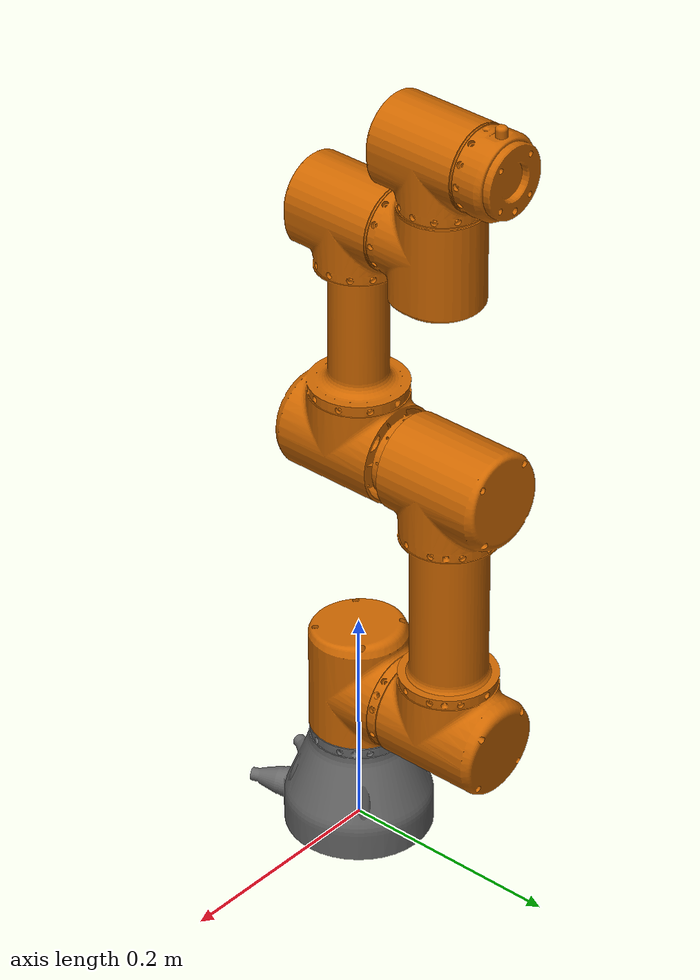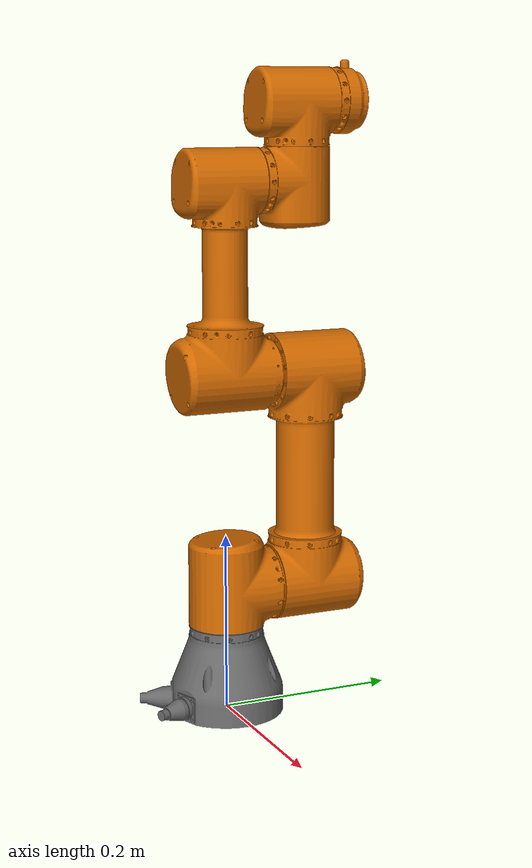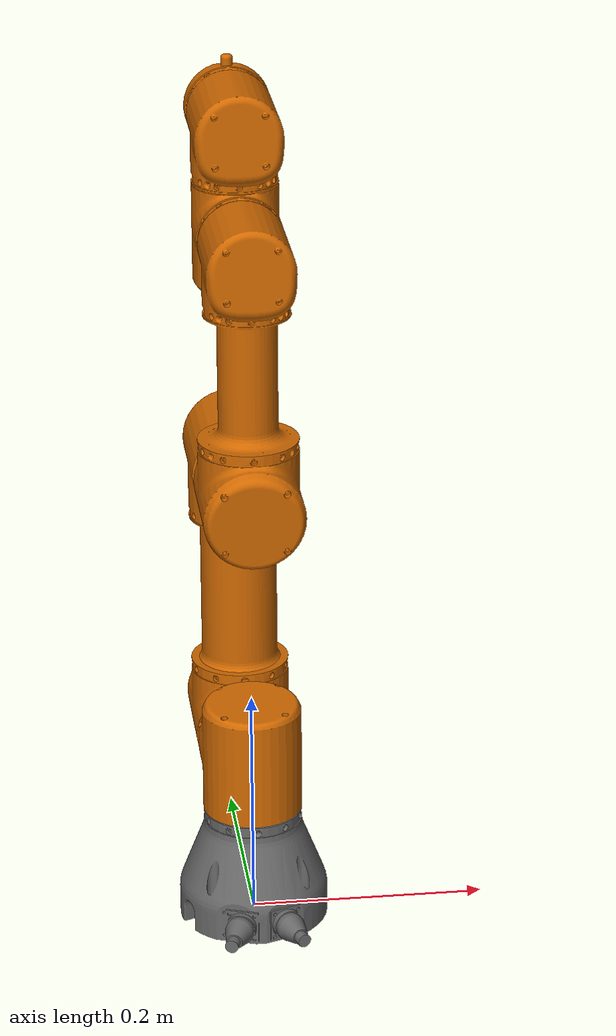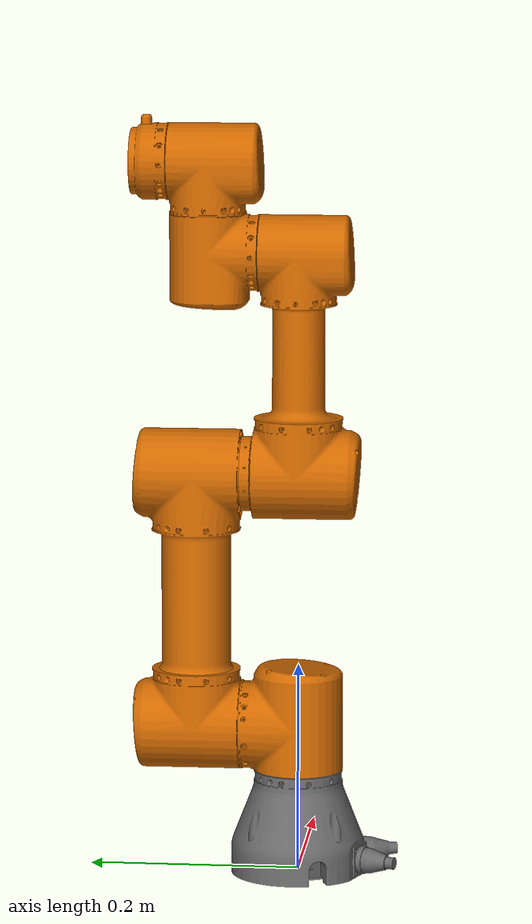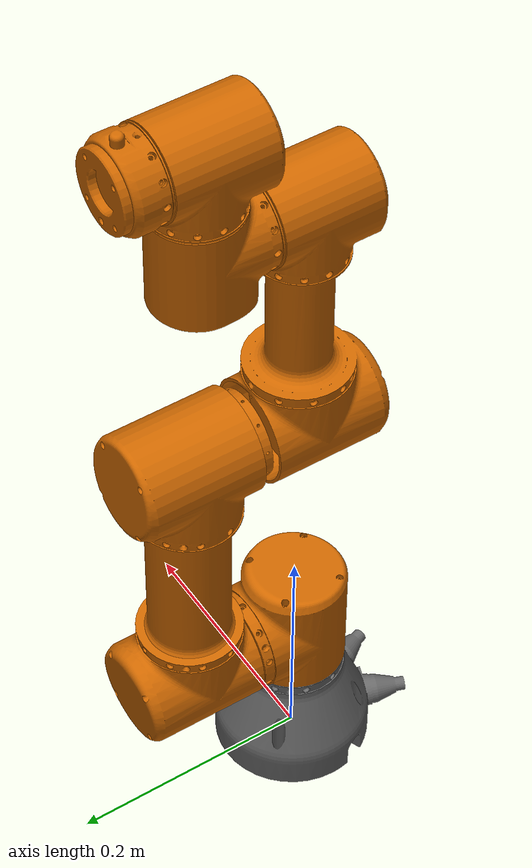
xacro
<?xml version="1.0"?>
<robot xmlns:xacro="http://www.ros.org/wiki/xacro" name="eRobo3">
    <xacro:arg name="initial_positions_file" default="initial_positions.yaml" />

    <!-- Import eRobo3 urdf file -->
    <xacro:include filename="$(find erob_arm)/urdf/erob_arm.urdf" />

    <!-- Import control_xacro -->
    <xacro:include filename="eRobo3.ros2_control.xacro" />

    <xacro:eRobo3_ros2_control name="FakeSystem" initial_positions_file="$(arg initial_positions_file)"/>

</robot>

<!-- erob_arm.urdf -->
<robot name="eRobo3" version="1.0">
  <joint name="Joint_1" type="revolute">
    <safety_controller k_position="100.0" k_velocity="40.0" soft_lower_limit="-2.8973" soft_upper_limit="2.8973" />
    <origin rpy="0.00000 0.00000 0.00000" xyz="0.00000 0.00000 0.00000"/>
    <parent link="base_link"/>
    <child link="Link_1"/>
    <axis xyz="0.00000 0.00000 1.00000"/>
    <limit effort="87" lower="-2.9671" upper="2.9671" velocity="2.3925" />
  </joint>
  <joint name="Joint_2" type="revolute">
    <safety_controller k_position="100.0" k_velocity="40.0" soft_lower_limit="-1.7628" soft_upper_limit="1.7628" />
    <origin rpy="0.00000 0.00000 0.00000" xyz="0.00000 0.05300 0.14050"/>
    <parent link="Link_1"/>
    <child link="Link_2"/>
    <axis xyz="0.00000 -1.00000 0.00000"/>
    <limit effort="87" lower="-1.8326" upper="1.8326" velocity="2.3925" />
  </joint>
  <joint name="Joint_3" type="revolute">
    <safety_controller k_position="100.0" k_velocity="40.0" soft_lower_limit="-1.8973" soft_upper_limit="1.8973" />
    <origin rpy="0.00000 0.00000 0.00000" xyz="0.00000 0.00050 0.24350"/>
    <parent link="Link_2"/>
    <child link="Link_3"/>
    <axis xyz="0.00000 -1.00000 0.00000"/>
    <limit effort="87" lower="-1.9671" upper="1.9671" velocity="2.3925" />
  </joint>
  <joint name="Joint_4" type="revolute">
    <safety_controller k_position="100.0" k_velocity="40.0" soft_lower_limit="-1.0718" soft_upper_limit="1.0175" />
    <origin rpy="0.00000 0.00000 0.00000" xyz="0.00000 -0.01400 0.21100"/>
    <parent link="Link_3"/>
    <child link="Link_4"/>
    <axis xyz="0.00000 -1.00000 0.00000"/>
    <limit effort="12" lower="-3.1416" upper="0.0873" velocity="2.3925" />
  </joint>
  <joint name="Joint_5" type="revolute">
    <safety_controller k_position="100.0" k_velocity="40.0" soft_lower_limit="-1.8973" soft_upper_limit="1.8973" />
    <origin rpy="0.00000 0.00000 0.00000" xyz="0.00000 0.04700 0.03900"/>
    <parent link="Link_4"/>
    <child link="Link_5"/>
    <axis xyz="0.00000 0.00000 1.00000"/>
    <limit effort="12" lower="-2.9671" upper="2.9671" velocity="2.8710" />
  </joint>
  <joint name="Joint_6" type="revolute">
    <safety_controller k_position="100.0" k_velocity="40.0" soft_lower_limit="-0.0175" soft_upper_limit="3.7525" />
    <origin rpy="0.00000 0.00000 0.00000" xyz="0.00000 0.06080 0.04700"/>
    <parent link="Link_5"/>
    <child link="Link_6"/>
    <axis xyz="0.00000 -1.00000 0.00000"/>
    <limit effort="12" lower="-0.0873" upper="3.8223" velocity="2.8710" />
  </joint>

  <link name="Link_1">
    <collision name="Link_1_collision">
      <origin rpy="0.00000 0.00000 0.00000" xyz="0.00000 0.00000 0.00000"/>
      <geometry>
        <mesh filename="package://erob_arm/meshes/Link_1.stl" scale="1.00000 1.00000 1.00000"/>
      </geometry>
    </collision>
    <inertial>
      <inertia ixx="0.00054" ixy="0.00000" ixz="0.00000" iyy="0.00052" iyz="0.00000" izz="0.00054"/>
      <origin rpy="0.00000 0.00000 0.00000" xyz="0.00000 0.00308 0.13617"/>
      <mass value="0.50622"/>
    </inertial>
    <visual name="Link_1_visual">
      <origin rpy="0.00000 0.00000 0.00000" xyz="0.00000 0.00000 0.00000"/>
      <material name="#ffffffff"/>
      <geometry>
        <mesh filename="package://erob_arm/meshes/Link_1.stl" scale="1.00000 1.00000 1.00000"/>
      </geometry>
    </visual>
  </link>
  <link name="Link_2">
    <collision name="Link_2_collision">
      <origin rpy="0.00000 0.00000 0.00000" xyz="0.00000 0.00000 0.00000"/>
      <geometry>
        <mesh filename="package://erob_arm/meshes/Link_2.stl" scale="1.00000 1.00000 1.00000"/>
      </geometry>
    </collision>
    <inertial>
      <inertia ixx="0.00157" ixy="0.00000" ixz="0.00000" iyy="0.00156" iyz="0.00000" izz="0.00119"/>
      <origin rpy="0.00000 0.00000 0.00000" xyz="0.00000 0.04217 0.11937"/>
      <mass value="1.16203"/>
    </inertial>
    <visual name="Link_2_visual">
      <origin rpy="0.00000 0.00000 0.00000" xyz="0.00000 0.00000 0.00000"/>
      <material name="#ffffffff"/>
      <geometry>
        <mesh filename="package://erob_arm/meshes/Link_2.stl" scale="1.00000 1.00000 1.00000"/>
      </geometry>
    </visual>
  </link>
  <link name="Link_3">
    <collision name="Link_3_collision">
      <origin rpy="0.00000 0.00000 0.00000" xyz="0.00000 0.00000 0.00000"/>
      <geometry>
        <mesh filename="package://erob_arm/meshes/Link_3.stl" scale="1.00000 1.00000 1.00000"/>
      </geometry>
    </collision>
    <inertial>
      <inertia ixx="0.00081" ixy="0.00000" ixz="0.00000" iyy="0.00091" iyz="-0.00001" izz="0.00062"/>
      <origin rpy="0.00000 0.00000 0.00000" xyz="0.00000 -0.05451 0.09532"/>
      <mass value="0.77552"/>
    </inertial>
    <visual name="Link_3_visual">
      <origin rpy="0.00000 0.00000 0.00000" xyz="0.00000 0.00000 0.00000"/>
      <material name="#ffffffff"/>
      <geometry>
        <mesh filename="package://erob_arm/meshes/Link_3.stl" scale="1.00000 1.00000 1.00000"/>
      </geometry>
    </visual>
  </link>
  <link name="Link_4">
    <collision name="Link_4_collision">
      <origin rpy="0.00000 0.00000 0.00000" xyz="0.00000 0.00000 0.00000"/>
      <geometry>
        <mesh filename="package://erob_arm/meshes/Link_4.stl" scale="1.00000 1.00000 1.00000"/>
      </geometry>
    </collision>
    <inertial>
      <inertia ixx="0.00025" ixy="0.00000" ixz="0.00000" iyy="0.00024" iyz="0.00000" izz="0.00026"/>
      <origin rpy="0.00000 0.00000 0.00000" xyz="0.00001 0.04110 0.00150"/>
      <mass value="0.31668"/>
    </inertial>
    <visual name="Link_4_visual">
      <origin rpy="0.00000 0.00000 0.00000" xyz="0.00000 0.00000 0.00000"/>
      <material name="#ffffffff"/>
      <geometry>
        <mesh filename="package://erob_arm/meshes/Link_4.stl" scale="1.00000 1.00000 1.00000"/>
      </geometry>
    </visual>
  </link>
  <link name="Link_5">
    <collision name="Link_5_collision">
      <origin rpy="0.00000 0.00000 0.00000" xyz="0.00000 0.00000 0.00000"/>
      <geometry>
        <mesh filename="package://erob_arm/meshes/Link_5.stl" scale="1.00000 1.00000 1.00000"/>
      </geometry>
    </collision>
    <inertial>
      <inertia ixx="0.00025" ixy="0.00000" ixz="0.00000" iyy="0.00026" iyz="0.00000" izz="0.00024"/>
      <origin rpy="0.00000 0.00000 0.00000" xyz="-0.00001 0.00150 0.04110"/>
      <mass value="0.31668"/>
    </inertial>
    <visual name="Link_5_visual">
      <origin rpy="0.00000 0.00000 0.00000" xyz="0.00000 0.00000 0.00000"/>
      <material name="#ffffffff"/>
      <geometry>
        <mesh filename="package://erob_arm/meshes/Link_5.stl" scale="1.00000 1.00000 1.00000"/>
      </geometry>
    </visual>
  </link>
  <link name="Link_6">
    <collision name="Link_6_collision">
      <origin rpy="0.00000 0.00000 0.00000" xyz="0.00000 0.00000 0.00000"/>
      <geometry>
        <mesh filename="package://erob_arm/meshes/Link_6.stl" scale="1.00000 1.00000 1.00000"/>
      </geometry>
    </collision>
    <inertial>
      <inertia ixx="0.00004" ixy="0.00000" ixz="0.00000" iyy="0.00007" iyz="0.00000" izz="0.00004"/>
      <origin rpy="0.00000 0.00000 0.00000" xyz="0.00000 -0.00578 0.00013"/>
      <mass value="0.10121"/>
    </inertial>
    <visual name="Link_6_visual">
      <origin rpy="0.00000 0.00000 0.00000" xyz="0.00000 0.00000 0.00000"/>
      <material name="#ffffffff"/>
      <geometry>
        <mesh filename="package://erob_arm/meshes/Link_6.stl" scale="1.00000 1.00000 1.00000"/>
      </geometry>
    </visual>
  </link>
  <link name="base_link">
    <collision name="base_link_collision">
      <origin rpy="0.00000 0.00000 0.00000" xyz="0.00000 0.00000 0.00000"/>
      <geometry>
        <mesh filename="package://erob_arm/meshes/base_link.stl" scale="1.00000 1.00000 1.00000"/>
      </geometry>
    </collision>
    <inertial>
      <inertia ixx="0.00083" ixy="0.00001" ixz="0.00001" iyy="0.00085" iyz="0.00003" izz="0.00110"/>
      <origin rpy="0.00000 0.00000 0.00000" xyz="0.00095 -0.00172 0.03600"/>
      <mass value="0.47602"/>
    </inertial>
    <visual name="base_link_visual">
      <origin rpy="0.00000 0.00000 0.00000" xyz="0.00000 0.00000 0.00000"/>
      <material name="base"/>
      <geometry>
        <mesh filename="package://erob_arm/meshes/base_link.stl" scale="1.00000 1.00000 1.00000"/>
      </geometry>
    </visual>
  </link>

  <material name="#ffffffff">
    <color rgba="0.8000 0.40000 0 1.0000"/>
  </material>
    <material name="base">
    <color rgba="0.40000 0.40000 0.40000 1.0000"/>
  </material>
</robot>
